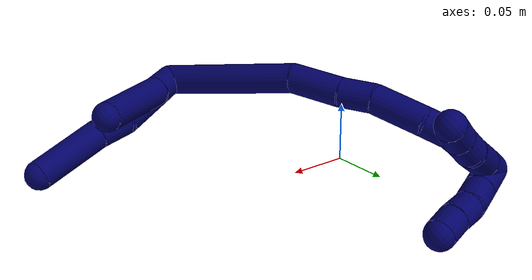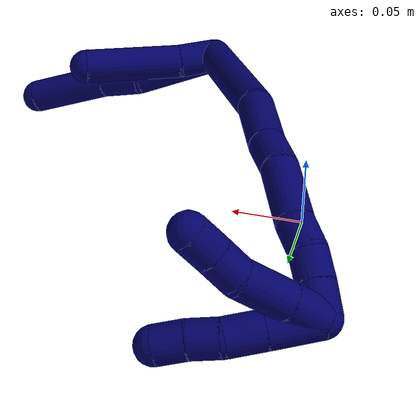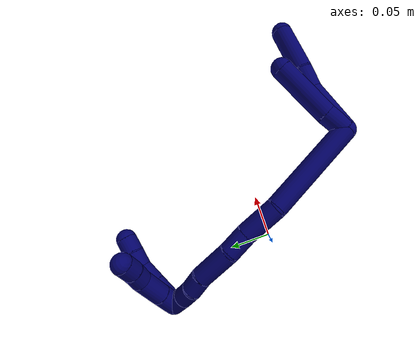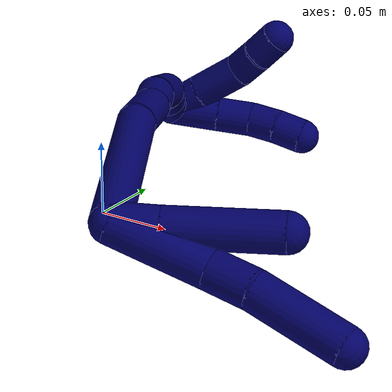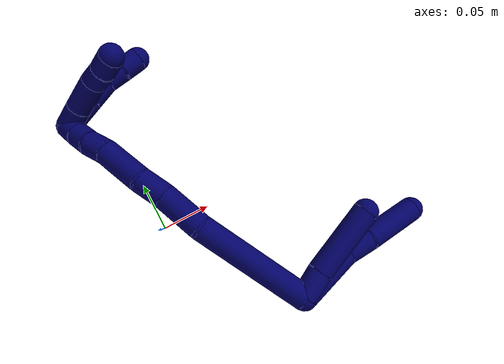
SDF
<sdf version="1.7">
 <world name="default">
  <model name="7">
   <static>0</static>
   <link name="7">
    <collision name="collision-cylinder-e_1_2_8">
     <pose>0.030751 -0.000858 -0.004526 2.95416 1.42208 2.92421</pose>
     <geometry><cylinder><radius>0.0125</radius><length>0.062188</length></cylinder></geometry>
     <surface>
      <friction><ode><mu>1.16</mu><mu2>1.16</mu2><slip1>0</slip1><slip2>0</slip2></ode></friction>
      <contact><ode><kp>1e+06</kp><kd>1</kd><max_vel>0</max_vel><min_depth>0.001</min_depth></ode></contact>
     </surface>
    </collision>
    <visual name="visual-cylinder-e_1_2_8">
     <pose>0.030751 -0.000858 -0.004526 2.95416 1.42208 2.92421</pose>
     <geometry><cylinder><radius>0.0125</radius><length>0.062188</length></cylinder></geometry>
     <material><ambient>0.003922 0 0.403922 1</ambient></material>
    </visual>
    <collision name="collision-cylinder-e_2_8_9">
     <pose>0.075522 -0.002642 -0.007623 0.574107 1.44994 0.511589</pose>
     <geometry><cylinder><radius>0.0125</radius><length>0.028246</length></cylinder></geometry>
     <surface>
      <friction><ode><mu>1.16</mu><mu2>1.16</mu2><slip1>0</slip1><slip2>0</slip2></ode></friction>
      <contact><ode><kp>1e+06</kp><kd>1</kd><max_vel>0</max_vel><min_depth>0.001</min_depth></ode></contact>
     </surface>
    </collision>
    <visual name="visual-cylinder-e_2_8_9">
     <pose>0.075522 -0.002642 -0.007623 0.574107 1.44994 0.511589</pose>
     <geometry><cylinder><radius>0.0125</radius><length>0.028246</length></cylinder></geometry>
     <material><ambient>0.003922 0 0.403922 1</ambient></material>
    </visual>
    <collision name="collision-cylinder-e_3_9_6">
     <pose>0.118906 -0.00854 -0.006227 1.57754 1.40301 1.40966</pose>
     <geometry><cylinder><radius>0.0125</radius><length>0.059566</length></cylinder></geometry>
     <surface>
      <friction><ode><mu>1.16</mu><mu2>1.16</mu2><slip1>0</slip1><slip2>0</slip2></ode></friction>
      <contact><ode><kp>1e+06</kp><kd>1</kd><max_vel>0</max_vel><min_depth>0.001</min_depth></ode></contact>
     </surface>
    </collision>
    <visual name="visual-cylinder-e_3_9_6">
     <pose>0.118906 -0.00854 -0.006227 1.57754 1.40301 1.40966</pose>
     <geometry><cylinder><radius>0.0125</radius><length>0.059566</length></cylinder></geometry>
     <material><ambient>0.003922 0 0.403922 1</ambient></material>
    </visual>
    <collision name="collision-cylinder-e_1_2_10">
     <pose>0.013127 0.004713 -0.002684 -2.08845 1.17898 -1.71055</pose>
     <geometry><cylinder><radius>0.0125</radius><length>0.028407</length></cylinder></geometry>
     <surface>
      <friction><ode><mu>1.16</mu><mu2>1.16</mu2><slip1>0</slip1><slip2>0</slip2></ode></friction>
      <contact><ode><kp>1e+06</kp><kd>1</kd><max_vel>0</max_vel><min_depth>0.001</min_depth></ode></contact>
     </surface>
    </collision>
    <visual name="visual-cylinder-e_1_2_10">
     <pose>0.013127 0.004713 -0.002684 -2.08845 1.17898 -1.71055</pose>
     <geometry><cylinder><radius>0.0125</radius><length>0.028407</length></cylinder></geometry>
     <material><ambient>0.003922 0 0.403922 1</ambient></material>
    </visual>
    <collision name="collision-cylinder-e_2_10_5">
     <pose>0.059828 0.021546 -0.008066 -1.78986 1.21656 -1.43022</pose>
     <geometry><cylinder><radius>0.0125</radius><length>0.071593</length></cylinder></geometry>
     <surface>
      <friction><ode><mu>1.16</mu><mu2>1.16</mu2><slip1>0</slip1><slip2>0</slip2></ode></friction>
      <contact><ode><kp>1e+06</kp><kd>1</kd><max_vel>0</max_vel><min_depth>0.001</min_depth></ode></contact>
     </surface>
    </collision>
    <visual name="visual-cylinder-e_2_10_5">
     <pose>0.059828 0.021546 -0.008066 -1.78986 1.21656 -1.43022</pose>
     <geometry><cylinder><radius>0.0125</radius><length>0.071593</length></cylinder></geometry>
     <material><ambient>0.003922 0 0.403922 1</ambient></material>
    </visual>
    <collision name="collision-cylinder-e_1_2_11">
     <pose>-0.019758 0.038061 -0.04122 -2.39602 -0.338595 0.824129</pose>
     <geometry><cylinder><radius>0.0125</radius><length>0.118963</length></cylinder></geometry>
     <surface>
      <friction><ode><mu>1.16</mu><mu2>1.16</mu2><slip1>0</slip1><slip2>0</slip2></ode></friction>
      <contact><ode><kp>1e+06</kp><kd>1</kd><max_vel>0</max_vel><min_depth>0.001</min_depth></ode></contact>
     </surface>
    </collision>
    <visual name="visual-cylinder-e_1_2_11">
     <pose>-0.019758 0.038061 -0.04122 -2.39602 -0.338595 0.824129</pose>
     <geometry><cylinder><radius>0.0125</radius><length>0.118963</length></cylinder></geometry>
     <material><ambient>0.003922 0 0.403922 1</ambient></material>
    </visual>
    <collision name="collision-cylinder-e_2_11_12">
     <pose>-0.043782 0.086634 -0.101486 -2.63728 -0.193689 0.721172</pose>
     <geometry><cylinder><radius>0.0125</radius><length>0.04434</length></cylinder></geometry>
     <surface>
      <friction><ode><mu>1.16</mu><mu2>1.16</mu2><slip1>0</slip1><slip2>0</slip2></ode></friction>
      <contact><ode><kp>1e+06</kp><kd>1</kd><max_vel>0</max_vel><min_depth>0.001</min_depth></ode></contact>
     </surface>
    </collision>
    <visual name="visual-cylinder-e_2_11_12">
     <pose>-0.043782 0.086634 -0.101486 -2.63728 -0.193689 0.721172</pose>
     <geometry><cylinder><radius>0.0125</radius><length>0.04434</length></cylinder></geometry>
     <material><ambient>0.003922 0 0.403922 1</ambient></material>
    </visual>
    <collision name="collision-cylinder-e_3_12_13">
     <pose>-0.052256 0.104026 -0.131899 -2.5973 -0.306599 1.01132</pose>
     <geometry><cylinder><radius>0.0125</radius><length>0.027871</length></cylinder></geometry>
     <surface>
      <friction><ode><mu>1.16</mu><mu2>1.16</mu2><slip1>0</slip1><slip2>0</slip2></ode></friction>
      <contact><ode><kp>1e+06</kp><kd>1</kd><max_vel>0</max_vel><min_depth>0.001</min_depth></ode></contact>
     </surface>
    </collision>
    <visual name="visual-cylinder-e_3_12_13">
     <pose>-0.052256 0.104026 -0.131899 -2.5973 -0.306599 1.01132</pose>
     <geometry><cylinder><radius>0.0125</radius><length>0.027871</length></cylinder></geometry>
     <material><ambient>0.003922 0 0.403922 1</ambient></material>
    </visual>
    <collision name="collision-cylinder-e_4_13_14">
     <pose>-0.06058 0.118183 -0.164275 -2.80813 -0.183163 0.999071</pose>
     <geometry><cylinder><radius>0.0125</radius><length>0.045226</length></cylinder></geometry>
     <surface>
      <friction><ode><mu>1.16</mu><mu2>1.16</mu2><slip1>0</slip1><slip2>0</slip2></ode></friction>
      <contact><ode><kp>1e+06</kp><kd>1</kd><max_vel>0</max_vel><min_depth>0.001</min_depth></ode></contact>
     </surface>
    </collision>
    <visual name="visual-cylinder-e_4_13_14">
     <pose>-0.06058 0.118183 -0.164275 -2.80813 -0.183163 0.999071</pose>
     <geometry><cylinder><radius>0.0125</radius><length>0.045226</length></cylinder></geometry>
     <material><ambient>0.003922 0 0.403922 1</ambient></material>
    </visual>
    <collision name="collision-cylinder-e_5_14_15">
     <pose>-0.068118 0.12734 -0.195441 -2.95869 -0.319659 2.10712</pose>
     <geometry><cylinder><radius>0.0125</radius><length>0.021759</length></cylinder></geometry>
     <surface>
      <friction><ode><mu>1.16</mu><mu2>1.16</mu2><slip1>0</slip1><slip2>0</slip2></ode></friction>
      <contact><ode><kp>1e+06</kp><kd>1</kd><max_vel>0</max_vel><min_depth>0.001</min_depth></ode></contact>
     </surface>
    </collision>
    <visual name="visual-cylinder-e_5_14_15">
     <pose>-0.068118 0.12734 -0.195441 -2.95869 -0.319659 2.10712</pose>
     <geometry><cylinder><radius>0.0125</radius><length>0.021759</length></cylinder></geometry>
     <material><ambient>0.003922 0 0.403922 1</ambient></material>
    </visual>
    <collision name="collision-cylinder-e_6_15_16">
     <pose>-0.073001 0.129353 -0.215611 -3.12808 -0.14519 2.95634</pose>
     <geometry><cylinder><radius>0.0125</radius><length>0.020242</length></cylinder></geometry>
     <surface>
      <friction><ode><mu>1.16</mu><mu2>1.16</mu2><slip1>0</slip1><slip2>0</slip2></ode></friction>
      <contact><ode><kp>1e+06</kp><kd>1</kd><max_vel>0</max_vel><min_depth>0.001</min_depth></ode></contact>
     </surface>
    </collision>
    <visual name="visual-cylinder-e_6_15_16">
     <pose>-0.073001 0.129353 -0.215611 -3.12808 -0.14519 2.95634</pose>
     <geometry><cylinder><radius>0.0125</radius><length>0.020242</length></cylinder></geometry>
     <material><ambient>0.003922 0 0.403922 1</ambient></material>
    </visual>
    <collision name="collision-cylinder-e_7_16_1">
     <pose>-0.075468 0.129602 -0.236377 -3.1311 -0.093 2.91695</pose>
     <geometry><cylinder><radius>0.0125</radius><length>0.021598</length></cylinder></geometry>
     <surface>
      <friction><ode><mu>1.16</mu><mu2>1.16</mu2><slip1>0</slip1><slip2>0</slip2></ode></friction>
      <contact><ode><kp>1e+06</kp><kd>1</kd><max_vel>0</max_vel><min_depth>0.001</min_depth></ode></contact>
     </surface>
    </collision>
    <visual name="visual-cylinder-e_7_16_1">
     <pose>-0.075468 0.129602 -0.236377 -3.1311 -0.093 2.91695</pose>
     <geometry><cylinder><radius>0.0125</radius><length>0.021598</length></cylinder></geometry>
     <material><ambient>0.003922 0 0.403922 1</ambient></material>
    </visual>
    <collision name="collision-cylinder-e_1_1_17">
     <pose>-0.0678 0.138192 -0.243279 -1.14453 0.749877 -0.496572</pose>
     <geometry><cylinder><radius>0.0125</radius><length>0.025445</length></cylinder></geometry>
     <surface>
      <friction><ode><mu>1.16</mu><mu2>1.16</mu2><slip1>0</slip1><slip2>0</slip2></ode></friction>
      <contact><ode><kp>1e+06</kp><kd>1</kd><max_vel>0</max_vel><min_depth>0.001</min_depth></ode></contact>
     </surface>
    </collision>
    <visual name="visual-cylinder-e_1_1_17">
     <pose>-0.0678 0.138192 -0.243279 -1.14453 0.749877 -0.496572</pose>
     <geometry><cylinder><radius>0.0125</radius><length>0.025445</length></cylinder></geometry>
     <material><ambient>0.003922 0 0.403922 1</ambient></material>
    </visual>
    <collision name="collision-cylinder-e_2_17_18">
     <pose>-0.047173 0.157926 -0.23414 -1.13151 0.765642 -0.500683</pose>
     <geometry><cylinder><radius>0.0125</radius><length>0.034506</length></cylinder></geometry>
     <surface>
      <friction><ode><mu>1.16</mu><mu2>1.16</mu2><slip1>0</slip1><slip2>0</slip2></ode></friction>
      <contact><ode><kp>1e+06</kp><kd>1</kd><max_vel>0</max_vel><min_depth>0.001</min_depth></ode></contact>
     </surface>
    </collision>
    <visual name="visual-cylinder-e_2_17_18">
     <pose>-0.047173 0.157926 -0.23414 -1.13151 0.765642 -0.500683</pose>
     <geometry><cylinder><radius>0.0125</radius><length>0.034506</length></cylinder></geometry>
     <material><ambient>0.003922 0 0.403922 1</ambient></material>
    </visual>
    <collision name="collision-cylinder-e_3_18_19">
     <pose>-0.029607 0.175262 -0.223216 -0.823396 0.59501 -0.266176</pose>
     <geometry><cylinder><radius>0.0125</radius><length>0.020017</length></cylinder></geometry>
     <surface>
      <friction><ode><mu>1.16</mu><mu2>1.16</mu2><slip1>0</slip1><slip2>0</slip2></ode></friction>
      <contact><ode><kp>1e+06</kp><kd>1</kd><max_vel>0</max_vel><min_depth>0.001</min_depth></ode></contact>
     </surface>
    </collision>
    <visual name="visual-cylinder-e_3_18_19">
     <pose>-0.029607 0.175262 -0.223216 -0.823396 0.59501 -0.266176</pose>
     <geometry><cylinder><radius>0.0125</radius><length>0.020017</length></cylinder></geometry>
     <material><ambient>0.003922 0 0.403922 1</ambient></material>
    </visual>
    <collision name="collision-cylinder-e_4_19_4">
     <pose>-0.018668 0.188249 -0.212661 -0.951746 0.560988 -0.294795</pose>
     <geometry><cylinder><radius>0.0125</radius><length>0.020032</length></cylinder></geometry>
     <surface>
      <friction><ode><mu>1.16</mu><mu2>1.16</mu2><slip1>0</slip1><slip2>0</slip2></ode></friction>
      <contact><ode><kp>1e+06</kp><kd>1</kd><max_vel>0</max_vel><min_depth>0.001</min_depth></ode></contact>
     </surface>
    </collision>
    <visual name="visual-cylinder-e_4_19_4">
     <pose>-0.018668 0.188249 -0.212661 -0.951746 0.560988 -0.294795</pose>
     <geometry><cylinder><radius>0.0125</radius><length>0.020032</length></cylinder></geometry>
     <material><ambient>0.003922 0 0.403922 1</ambient></material>
    </visual>
    <collision name="collision-cylinder-e_1_1_20">
     <pose>-0.059888 0.133881 -0.249884 -2.15514 1.2782 -1.88916</pose>
     <geometry><cylinder><radius>0.0125</radius><length>0.034638</length></cylinder></geometry>
     <surface>
      <friction><ode><mu>1.16</mu><mu2>1.16</mu2><slip1>0</slip1><slip2>0</slip2></ode></friction>
      <contact><ode><kp>1e+06</kp><kd>1</kd><max_vel>0</max_vel><min_depth>0.001</min_depth></ode></contact>
     </surface>
    </collision>
    <visual name="visual-cylinder-e_1_1_20">
     <pose>-0.059888 0.133881 -0.249884 -2.15514 1.2782 -1.88916</pose>
     <geometry><cylinder><radius>0.0125</radius><length>0.034638</length></cylinder></geometry>
     <material><ambient>0.003922 0 0.403922 1</ambient></material>
    </visual>
    <collision name="collision-cylinder-e_2_20_21">
     <pose>-0.031267 0.141099 -0.254523 -2.12353 1.28134 -1.85648</pose>
     <geometry><cylinder><radius>0.0125</radius><length>0.025123</length></cylinder></geometry>
     <surface>
      <friction><ode><mu>1.16</mu><mu2>1.16</mu2><slip1>0</slip1><slip2>0</slip2></ode></friction>
      <contact><ode><kp>1e+06</kp><kd>1</kd><max_vel>0</max_vel><min_depth>0.001</min_depth></ode></contact>
     </surface>
    </collision>
    <visual name="visual-cylinder-e_2_20_21">
     <pose>-0.031267 0.141099 -0.254523 -2.12353 1.28134 -1.85648</pose>
     <geometry><cylinder><radius>0.0125</radius><length>0.025123</length></cylinder></geometry>
     <material><ambient>0.003922 0 0.403922 1</ambient></material>
    </visual>
    <collision name="collision-cylinder-e_3_21_22">
     <pose>-0.009154 0.144783 -0.256063 -1.07506 1.49959 -1.01346</pose>
     <geometry><cylinder><radius>0.0125</radius><length>0.020199</length></cylinder></geometry>
     <surface>
      <friction><ode><mu>1.16</mu><mu2>1.16</mu2><slip1>0</slip1><slip2>0</slip2></ode></friction>
      <contact><ode><kp>1e+06</kp><kd>1</kd><max_vel>0</max_vel><min_depth>0.001</min_depth></ode></contact>
     </surface>
    </collision>
    <visual name="visual-cylinder-e_3_21_22">
     <pose>-0.009154 0.144783 -0.256063 -1.07506 1.49959 -1.01346</pose>
     <geometry><cylinder><radius>0.0125</radius><length>0.020199</length></cylinder></geometry>
     <material><ambient>0.003922 0 0.403922 1</ambient></material>
    </visual>
    <collision name="collision-cylinder-e_4_22_3">
     <pose>0.010911 0.145475 -0.256485 -3.06317 1.49428 -3.05694</pose>
     <geometry><cylinder><radius>0.0125</radius><length>0.02004</length></cylinder></geometry>
     <surface>
      <friction><ode><mu>1.16</mu><mu2>1.16</mu2><slip1>0</slip1><slip2>0</slip2></ode></friction>
      <contact><ode><kp>1e+06</kp><kd>1</kd><max_vel>0</max_vel><min_depth>0.001</min_depth></ode></contact>
     </surface>
    </collision>
    <visual name="visual-cylinder-e_4_22_3">
     <pose>0.010911 0.145475 -0.256485 -3.06317 1.49428 -3.05694</pose>
     <geometry><cylinder><radius>0.0125</radius><length>0.02004</length></cylinder></geometry>
     <material><ambient>0.003922 0 0.403922 1</ambient></material>
    </visual>
    <collision name="collision-sphere-3">
     <pose>0.020902 0.145535 -0.257249 0 -0 0</pose>
     <geometry><sphere><radius>0.0125</radius></sphere></geometry>
     <surface>
      <friction><ode><mu>1.16</mu><mu2>1.16</mu2><slip1>0</slip1><slip2>0</slip2></ode></friction>
      <contact><ode><kp>1e+06</kp><kd>1</kd><max_vel>0</max_vel><min_depth>0.001</min_depth></ode></contact>
     </surface>
    </collision>
    <visual name="visual-sphere-3">
     <pose>0.020902 0.145535 -0.257249 0 -0 0</pose>
     <geometry><sphere><radius>0.0125</radius></sphere></geometry>
     <material><ambient>0.003922 0 0.403922 1</ambient></material>
    </visual>
    <collision name="collision-sphere-22">
     <pose>0.00092 0.145415 -0.255721 0 -0 0</pose>
     <geometry><sphere><radius>0.0125</radius></sphere></geometry>
     <surface>
      <friction><ode><mu>1.16</mu><mu2>1.16</mu2><slip1>0</slip1><slip2>0</slip2></ode></friction>
      <contact><ode><kp>1e+06</kp><kd>1</kd><max_vel>0</max_vel><min_depth>0.001</min_depth></ode></contact>
     </surface>
    </collision>
    <visual name="visual-sphere-22">
     <pose>0.00092 0.145415 -0.255721 0 -0 0</pose>
     <geometry><sphere><radius>0.0125</radius></sphere></geometry>
     <material><ambient>0.003922 0 0.403922 1</ambient></material>
    </visual>
    <collision name="collision-sphere-21">
     <pose>-0.019228 0.144151 -0.256405 0 -0 0</pose>
     <geometry><sphere><radius>0.0125</radius></sphere></geometry>
     <surface>
      <friction><ode><mu>1.16</mu><mu2>1.16</mu2><slip1>0</slip1><slip2>0</slip2></ode></friction>
      <contact><ode><kp>1e+06</kp><kd>1</kd><max_vel>0</max_vel><min_depth>0.001</min_depth></ode></contact>
     </surface>
    </collision>
    <visual name="visual-sphere-21">
     <pose>-0.019228 0.144151 -0.256405 0 -0 0</pose>
     <geometry><sphere><radius>0.0125</radius></sphere></geometry>
     <material><ambient>0.003922 0 0.403922 1</ambient></material>
    </visual>
    <collision name="collision-sphere-20">
     <pose>-0.043306 0.138048 -0.25264 0 -0 0</pose>
     <geometry><sphere><radius>0.0125</radius></sphere></geometry>
     <surface>
      <friction><ode><mu>1.16</mu><mu2>1.16</mu2><slip1>0</slip1><slip2>0</slip2></ode></friction>
      <contact><ode><kp>1e+06</kp><kd>1</kd><max_vel>0</max_vel><min_depth>0.001</min_depth></ode></contact>
     </surface>
    </collision>
    <visual name="visual-sphere-20">
     <pose>-0.043306 0.138048 -0.25264 0 -0 0</pose>
     <geometry><sphere><radius>0.0125</radius></sphere></geometry>
     <material><ambient>0.003922 0 0.403922 1</ambient></material>
    </visual>
    <collision name="collision-sphere-4">
     <pose>-0.013339 0.195156 -0.20774 0 -0 0</pose>
     <geometry><sphere><radius>0.0125</radius></sphere></geometry>
     <surface>
      <friction><ode><mu>1.16</mu><mu2>1.16</mu2><slip1>0</slip1><slip2>0</slip2></ode></friction>
      <contact><ode><kp>1e+06</kp><kd>1</kd><max_vel>0</max_vel><min_depth>0.001</min_depth></ode></contact>
     </surface>
    </collision>
    <visual name="visual-sphere-4">
     <pose>-0.013339 0.195156 -0.20774 0 -0 0</pose>
     <geometry><sphere><radius>0.0125</radius></sphere></geometry>
     <material><ambient>0.003922 0 0.403922 1</ambient></material>
    </visual>
    <collision name="collision-sphere-5">
     <pose>0.093402 0.033666 -0.010765 0 -0 0</pose>
     <geometry><sphere><radius>0.0125</radius></sphere></geometry>
     <surface>
      <friction><ode><mu>1.16</mu><mu2>1.16</mu2><slip1>0</slip1><slip2>0</slip2></ode></friction>
      <contact><ode><kp>1e+06</kp><kd>1</kd><max_vel>0</max_vel><min_depth>0.001</min_depth></ode></contact>
     </surface>
    </collision>
    <visual name="visual-sphere-5">
     <pose>0.093402 0.033666 -0.010765 0 -0 0</pose>
     <geometry><sphere><radius>0.0125</radius></sphere></geometry>
     <material><ambient>0.003922 0 0.403922 1</ambient></material>
    </visual>
    <collision name="collision-sphere-10">
     <pose>0.026254 0.009427 -0.005368 0 -0 0</pose>
     <geometry><sphere><radius>0.0125</radius></sphere></geometry>
     <surface>
      <friction><ode><mu>1.16</mu><mu2>1.16</mu2><slip1>0</slip1><slip2>0</slip2></ode></friction>
      <contact><ode><kp>1e+06</kp><kd>1</kd><max_vel>0</max_vel><min_depth>0.001</min_depth></ode></contact>
     </surface>
    </collision>
    <visual name="visual-sphere-10">
     <pose>0.026254 0.009427 -0.005368 0 -0 0</pose>
     <geometry><sphere><radius>0.0125</radius></sphere></geometry>
     <material><ambient>0.003922 0 0.403922 1</ambient></material>
    </visual>
    <collision name="collision-sphere-6">
     <pose>0.148271 -0.013514 -0.00626 0 -0 0</pose>
     <geometry><sphere><radius>0.0125</radius></sphere></geometry>
     <surface>
      <friction><ode><mu>1.16</mu><mu2>1.16</mu2><slip1>0</slip1><slip2>0</slip2></ode></friction>
      <contact><ode><kp>1e+06</kp><kd>1</kd><max_vel>0</max_vel><min_depth>0.001</min_depth></ode></contact>
     </surface>
    </collision>
    <visual name="visual-sphere-6">
     <pose>0.148271 -0.013514 -0.00626 0 -0 0</pose>
     <geometry><sphere><radius>0.0125</radius></sphere></geometry>
     <material><ambient>0.003922 0 0.403922 1</ambient></material>
    </visual>
    <collision name="collision-sphere-9">
     <pose>0.089542 -0.003566 -0.006193 0 -0 0</pose>
     <geometry><sphere><radius>0.0125</radius></sphere></geometry>
     <surface>
      <friction><ode><mu>1.16</mu><mu2>1.16</mu2><slip1>0</slip1><slip2>0</slip2></ode></friction>
      <contact><ode><kp>1e+06</kp><kd>1</kd><max_vel>0</max_vel><min_depth>0.001</min_depth></ode></contact>
     </surface>
    </collision>
    <visual name="visual-sphere-9">
     <pose>0.089542 -0.003566 -0.006193 0 -0 0</pose>
     <geometry><sphere><radius>0.0125</radius></sphere></geometry>
     <material><ambient>0.003922 0 0.403922 1</ambient></material>
    </visual>
    <collision name="collision-sphere-2">
     <geometry><sphere><radius>0.0125</radius></sphere></geometry>
     <surface>
      <friction><ode><mu>1.16</mu><mu2>1.16</mu2><slip1>0</slip1><slip2>0</slip2></ode></friction>
      <contact><ode><kp>1e+06</kp><kd>1</kd><max_vel>0</max_vel><min_depth>0.001</min_depth></ode></contact>
     </surface>
    </collision>
    <visual name="visual-sphere-2">
     <geometry><sphere><radius>0.0125</radius></sphere></geometry>
     <material><ambient>0.003922 0 0.403922 1</ambient></material>
    </visual>
    <collision name="collision-sphere-19">
     <pose>-0.023997 0.181341 -0.217582 0 -0 0</pose>
     <geometry><sphere><radius>0.0125</radius></sphere></geometry>
     <surface>
      <friction><ode><mu>1.16</mu><mu2>1.16</mu2><slip1>0</slip1><slip2>0</slip2></ode></friction>
      <contact><ode><kp>1e+06</kp><kd>1</kd><max_vel>0</max_vel><min_depth>0.001</min_depth></ode></contact>
     </surface>
    </collision>
    <visual name="visual-sphere-19">
     <pose>-0.023997 0.181341 -0.217582 0 -0 0</pose>
     <geometry><sphere><radius>0.0125</radius></sphere></geometry>
     <material><ambient>0.003922 0 0.403922 1</ambient></material>
    </visual>
    <collision name="collision-sphere-8">
     <pose>0.061502 -0.001717 -0.009053 0 -0 0</pose>
     <geometry><sphere><radius>0.0125</radius></sphere></geometry>
     <surface>
      <friction><ode><mu>1.16</mu><mu2>1.16</mu2><slip1>0</slip1><slip2>0</slip2></ode></friction>
      <contact><ode><kp>1e+06</kp><kd>1</kd><max_vel>0</max_vel><min_depth>0.001</min_depth></ode></contact>
     </surface>
    </collision>
    <visual name="visual-sphere-8">
     <pose>0.061502 -0.001717 -0.009053 0 -0 0</pose>
     <geometry><sphere><radius>0.0125</radius></sphere></geometry>
     <material><ambient>0.003922 0 0.403922 1</ambient></material>
    </visual>
    <collision name="collision-sphere-11">
     <pose>-0.039515 0.076122 -0.082439 0 -0 0</pose>
     <geometry><sphere><radius>0.0125</radius></sphere></geometry>
     <surface>
      <friction><ode><mu>1.16</mu><mu2>1.16</mu2><slip1>0</slip1><slip2>0</slip2></ode></friction>
      <contact><ode><kp>1e+06</kp><kd>1</kd><max_vel>0</max_vel><min_depth>0.001</min_depth></ode></contact>
     </surface>
    </collision>
    <visual name="visual-sphere-11">
     <pose>-0.039515 0.076122 -0.082439 0 -0 0</pose>
     <geometry><sphere><radius>0.0125</radius></sphere></geometry>
     <material><ambient>0.003922 0 0.403922 1</ambient></material>
    </visual>
    <collision name="collision-sphere-12">
     <pose>-0.04805 0.097146 -0.120533 0 -0 0</pose>
     <geometry><sphere><radius>0.0125</radius></sphere></geometry>
     <surface>
      <friction><ode><mu>1.16</mu><mu2>1.16</mu2><slip1>0</slip1><slip2>0</slip2></ode></friction>
      <contact><ode><kp>1e+06</kp><kd>1</kd><max_vel>0</max_vel><min_depth>0.001</min_depth></ode></contact>
     </surface>
    </collision>
    <visual name="visual-sphere-12">
     <pose>-0.04805 0.097146 -0.120533 0 -0 0</pose>
     <geometry><sphere><radius>0.0125</radius></sphere></geometry>
     <material><ambient>0.003922 0 0.403922 1</ambient></material>
    </visual>
    <collision name="collision-sphere-13">
     <pose>-0.056462 0.110905 -0.143265 0 -0 0</pose>
     <geometry><sphere><radius>0.0125</radius></sphere></geometry>
     <surface>
      <friction><ode><mu>1.16</mu><mu2>1.16</mu2><slip1>0</slip1><slip2>0</slip2></ode></friction>
      <contact><ode><kp>1e+06</kp><kd>1</kd><max_vel>0</max_vel><min_depth>0.001</min_depth></ode></contact>
     </surface>
    </collision>
    <visual name="visual-sphere-13">
     <pose>-0.056462 0.110905 -0.143265 0 -0 0</pose>
     <geometry><sphere><radius>0.0125</radius></sphere></geometry>
     <material><ambient>0.003922 0 0.403922 1</ambient></material>
    </visual>
    <collision name="collision-sphere-14">
     <pose>-0.064699 0.125461 -0.185285 0 -0 0</pose>
     <geometry><sphere><radius>0.0125</radius></sphere></geometry>
     <surface>
      <friction><ode><mu>1.16</mu><mu2>1.16</mu2><slip1>0</slip1><slip2>0</slip2></ode></friction>
      <contact><ode><kp>1e+06</kp><kd>1</kd><max_vel>0</max_vel><min_depth>0.001</min_depth></ode></contact>
     </surface>
    </collision>
    <visual name="visual-sphere-14">
     <pose>-0.064699 0.125461 -0.185285 0 -0 0</pose>
     <geometry><sphere><radius>0.0125</radius></sphere></geometry>
     <material><ambient>0.003922 0 0.403922 1</ambient></material>
    </visual>
    <collision name="collision-sphere-15">
     <pose>-0.071537 0.129218 -0.205597 0 -0 0</pose>
     <geometry><sphere><radius>0.0125</radius></sphere></geometry>
     <surface>
      <friction><ode><mu>1.16</mu><mu2>1.16</mu2><slip1>0</slip1><slip2>0</slip2></ode></friction>
      <contact><ode><kp>1e+06</kp><kd>1</kd><max_vel>0</max_vel><min_depth>0.001</min_depth></ode></contact>
     </surface>
    </collision>
    <visual name="visual-sphere-15">
     <pose>-0.071537 0.129218 -0.205597 0 -0 0</pose>
     <geometry><sphere><radius>0.0125</radius></sphere></geometry>
     <material><ambient>0.003922 0 0.403922 1</ambient></material>
    </visual>
    <collision name="collision-sphere-16">
     <pose>-0.074465 0.129489 -0.225625 0 -0 0</pose>
     <geometry><sphere><radius>0.0125</radius></sphere></geometry>
     <surface>
      <friction><ode><mu>1.16</mu><mu2>1.16</mu2><slip1>0</slip1><slip2>0</slip2></ode></friction>
      <contact><ode><kp>1e+06</kp><kd>1</kd><max_vel>0</max_vel><min_depth>0.001</min_depth></ode></contact>
     </surface>
    </collision>
    <visual name="visual-sphere-16">
     <pose>-0.074465 0.129489 -0.225625 0 -0 0</pose>
     <geometry><sphere><radius>0.0125</radius></sphere></geometry>
     <material><ambient>0.003922 0 0.403922 1</ambient></material>
    </visual>
    <collision name="collision-sphere-1">
     <pose>-0.076471 0.129715 -0.247129 0 -0 0</pose>
     <geometry><sphere><radius>0.0125</radius></sphere></geometry>
     <surface>
      <friction><ode><mu>1.16</mu><mu2>1.16</mu2><slip1>0</slip1><slip2>0</slip2></ode></friction>
      <contact><ode><kp>1e+06</kp><kd>1</kd><max_vel>0</max_vel><min_depth>0.001</min_depth></ode></contact>
     </surface>
    </collision>
    <visual name="visual-sphere-1">
     <pose>-0.076471 0.129715 -0.247129 0 -0 0</pose>
     <geometry><sphere><radius>0.0125</radius></sphere></geometry>
     <material><ambient>0.003922 0 0.403922 1</ambient></material>
    </visual>
    <collision name="collision-sphere-18">
     <pose>-0.035216 0.169183 -0.22885 0 -0 0</pose>
     <geometry><sphere><radius>0.0125</radius></sphere></geometry>
     <surface>
      <friction><ode><mu>1.16</mu><mu2>1.16</mu2><slip1>0</slip1><slip2>0</slip2></ode></friction>
      <contact><ode><kp>1e+06</kp><kd>1</kd><max_vel>0</max_vel><min_depth>0.001</min_depth></ode></contact>
     </surface>
    </collision>
    <visual name="visual-sphere-18">
     <pose>-0.035216 0.169183 -0.22885 0 -0 0</pose>
     <geometry><sphere><radius>0.0125</radius></sphere></geometry>
     <material><ambient>0.003922 0 0.403922 1</ambient></material>
    </visual>
    <collision name="collision-sphere-17">
     <pose>-0.059129 0.146669 -0.23943 0 -0 0</pose>
     <geometry><sphere><radius>0.0125</radius></sphere></geometry>
     <surface>
      <friction><ode><mu>1.16</mu><mu2>1.16</mu2><slip1>0</slip1><slip2>0</slip2></ode></friction>
      <contact><ode><kp>1e+06</kp><kd>1</kd><max_vel>0</max_vel><min_depth>0.001</min_depth></ode></contact>
     </surface>
    </collision>
    <visual name="visual-sphere-17">
     <pose>-0.059129 0.146669 -0.23943 0 -0 0</pose>
     <geometry><sphere><radius>0.0125</radius></sphere></geometry>
     <material><ambient>0.003922 0 0.403922 1</ambient></material>
    </visual>
    <inertial>
     <pose>-0.005919 0.074811 -0.11215 0 -0 0</pose>
     <mass>0.75</mass>
     <inertia>
      <ixx>0.000238</ixx>
      <ixy>0</ixy>
      <ixz>0</ixz>
      <iyy>0.000161</iyy>
      <iyz>0</iyz>
      <izz>-0.000179</izz>
     </inertia>
    </inertial>
   </link>
   <pose>0.09464 -0.120183 0.059773 0.909437 0.216802 0.168749</pose>
  </model>
 </world>
</sdf>
